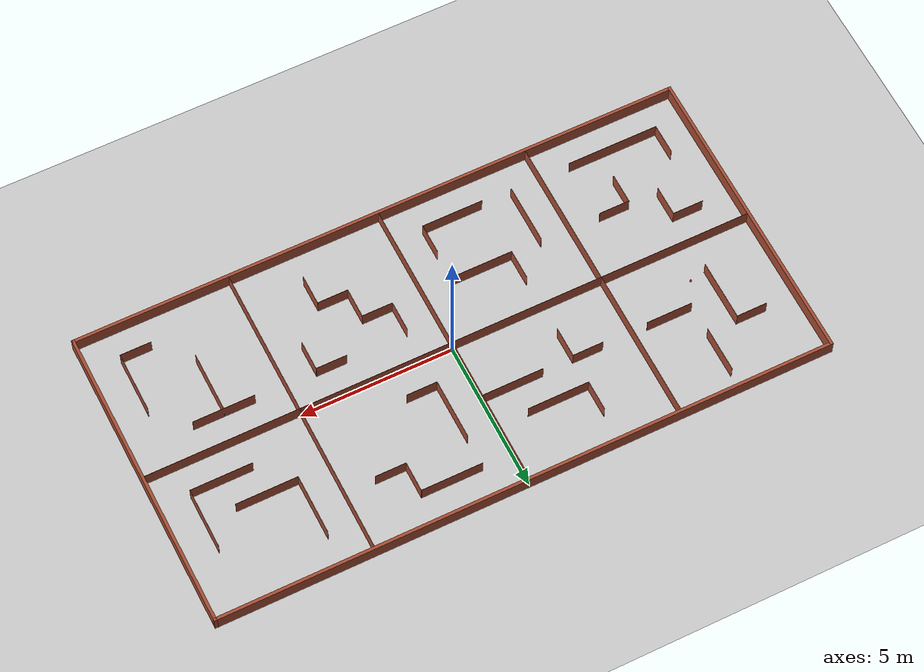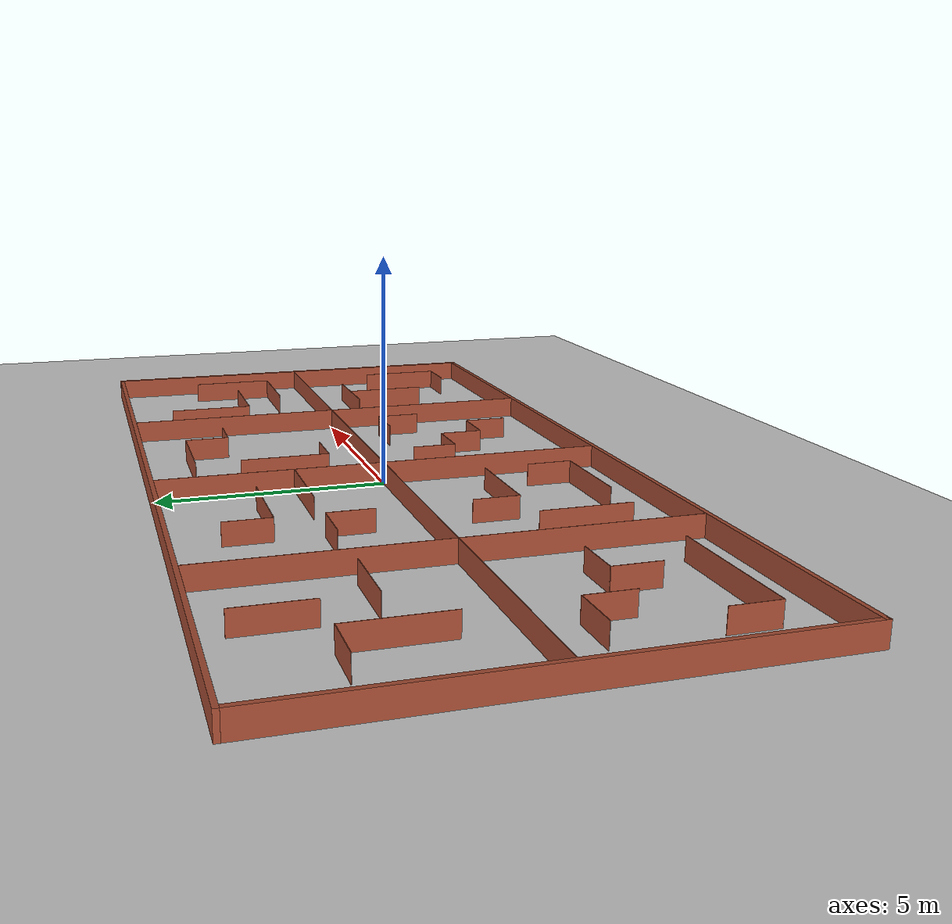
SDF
<sdf version="1.7">
 <world name="default">
  <light name="sun" type="directional">
   <pose>0 0 10 0 -0 0</pose>
   <diffuse>0.8 0.8 0.8 1</diffuse>
   <specular>0.2 0.2 0.2 1</specular>
   <attenuation>
    <range>1000</range>
    <constant>0.9</constant>
    <linear>0.01</linear>
    <quadratic>0.001</quadratic>
   </attenuation>
   <direction>-0.5 0.1 -0.9</direction>
   <spot><inner_angle>0</inner_angle><outer_angle>0</outer_angle><falloff>0</falloff></spot>
  </light>
  <model name="ground_plane">
   <static>1</static>
   <link name="link">
    <collision name="collision">
     <geometry><plane><normal>0 0 1</normal><size>100 100</size></plane></geometry>
     <surface>
      <contact><collide_bitmask>65535</collide_bitmask></contact>
      <friction><ode><mu>100</mu><mu2>50</mu2></ode></friction>
     </surface>
    </collision>
    <visual name="visual">
     <cast_shadows>0</cast_shadows>
     <geometry><plane><normal>0 0 1</normal><size>100 100</size></plane></geometry>
     <material>
      <script><uri>file://media/materials/scripts/gazebo.material</uri><name>Gazebo/Grey</name></script>
     </material>
    </visual>
   </link>
  </model>
  <gravity>0 0 -9.8</gravity>
  <magnetic_field>6e-06 2.3e-05 -4.2e-05</magnetic_field>
  <atmosphere type="adiabatic"/>
  <physics type="ode">
   <max_step_size>0.001</max_step_size>
   <real_time_factor>1</real_time_factor>
   <real_time_update_rate>1000</real_time_update_rate>
  </physics>
  <scene><ambient>0.4 0.4 0.4 1</ambient><background>0.7 0.7 0.7 1</background><shadows>1</shadows></scene>
  <spherical_coordinates>
   <surface_model>EARTH_WGS84</surface_model>
   <latitude_deg>0</latitude_deg>
   <longitude_deg>0</longitude_deg>
   <elevation>0</elevation>
   <heading_deg>0</heading_deg>
  </spherical_coordinates>
  <model name="tb_multi_map_1">
   <link name="Wall_11">
    <collision name="Wall_11_Collision">
     <geometry><box><size>10.01 0.01 0.5</size></box></geometry>
     <pose>0 0 0.25 0 -0 0</pose>
    </collision>
    <visual name="Wall_11_Visual">
     <pose>0 0 0.25 0 -0 0</pose>
     <geometry><box><size>10.01 0.01 0.5</size></box></geometry>
     <material>
      <script><uri>file://media/materials/scripts/gazebo.material</uri><name>Gazebo/Bricks</name></script>
      <ambient>1 1 1 1</ambient>
     </material>
     <meta><layer>0</layer></meta>
    </visual>
    <pose>5 0 0 0 -0 -1.5708</pose>
   </link>
   <link name="Wall_13">
    <collision name="Wall_13_Collision">
     <geometry><box><size>10.01 0.01 0.5</size></box></geometry>
     <pose>0 0 0.25 0 -0 0</pose>
    </collision>
    <visual name="Wall_13_Visual">
     <pose>0 0 0.25 0 -0 0</pose>
     <geometry><box><size>10.01 0.01 0.5</size></box></geometry>
     <material>
      <script><uri>file://media/materials/scripts/gazebo.material</uri><name>Gazebo/Bricks</name></script>
      <ambient>1 1 1 1</ambient>
     </material>
     <meta><layer>0</layer></meta>
    </visual>
    <pose>0 0 0 0 -0 -1.5708</pose>
   </link>
   <link name="Wall_15">
    <collision name="Wall_15_Collision">
     <geometry><box><size>10.01 0.01 0.5</size></box></geometry>
     <pose>0 0 0.25 0 -0 0</pose>
    </collision>
    <visual name="Wall_15_Visual">
     <pose>0 0 0.25 0 -0 0</pose>
     <geometry><box><size>10.01 0.01 0.5</size></box></geometry>
     <material>
      <script><uri>file://media/materials/scripts/gazebo.material</uri><name>Gazebo/Bricks</name></script>
      <ambient>1 1 1 1</ambient>
     </material>
     <meta><layer>0</layer></meta>
    </visual>
    <pose>-5 0 0 0 -0 -1.5708</pose>
   </link>
   <link name="Wall_19">
    <collision name="Wall_19_Collision">
     <geometry><box><size>1.51 0.01 0.5</size></box></geometry>
     <pose>0 0 0.25 0 -0 0</pose>
    </collision>
    <visual name="Wall_19_Visual">
     <pose>0 0 0.25 0 -0 0</pose>
     <geometry><box><size>1.51 0.01 0.5</size></box></geometry>
     <material>
      <script><uri>file://media/materials/scripts/gazebo.material</uri><name>Gazebo/Bricks</name></script>
      <ambient>1 1 1 1</ambient>
     </material>
     <meta><layer>0</layer></meta>
    </visual>
    <pose>-7 3.75 0 0 -0 -1.5708</pose>
   </link>
   <link name="Wall_24">
    <collision name="Wall_24_Collision">
     <geometry><box><size>1.01 0.01 0.5</size></box></geometry>
     <pose>0 0 0.25 0 -0 0</pose>
    </collision>
    <visual name="Wall_24_Visual">
     <pose>0 0 0.25 0 -0 0</pose>
     <geometry><box><size>1.01 0.01 0.5</size></box></geometry>
     <material>
      <script><uri>file://media/materials/scripts/gazebo.material</uri><name>Gazebo/Bricks</name></script>
      <ambient>1 1 1 1</ambient>
     </material>
     <meta><layer>0</layer></meta>
    </visual>
    <pose>-8.5 3 0 0 -0 0</pose>
   </link>
   <link name="Wall_39">
    <collision name="Wall_39_Collision">
     <geometry><box><size>1.51 0.01 0.5</size></box></geometry>
     <pose>0 0 0.25 0 -0 0</pose>
    </collision>
    <visual name="Wall_39_Visual">
     <pose>0 0 0.25 0 -0 0</pose>
     <geometry><box><size>1.51 0.01 0.5</size></box></geometry>
     <material>
      <script><uri>file://media/materials/scripts/gazebo.material</uri><name>Gazebo/Bricks</name></script>
      <ambient>1 1 1 1</ambient>
     </material>
     <meta><layer>0</layer></meta>
    </visual>
    <pose>-6.25 2 0 0 -0 0</pose>
   </link>
   <link name="Wall_4">
    <collision name="Wall_4_Collision">
     <geometry><box><size>10.2 0.1 0.5</size></box></geometry>
     <pose>0 0 0.25 0 -0 0</pose>
    </collision>
    <visual name="Wall_4_Visual">
     <pose>0 0 0.25 0 -0 0</pose>
     <geometry><box><size>10.2 0.1 0.5</size></box></geometry>
     <material>
      <script><uri>file://media/materials/scripts/gazebo.material</uri><name>Gazebo/Bricks</name></script>
      <ambient>1 1 1 1</ambient>
     </material>
     <meta><layer>0</layer></meta>
    </visual>
    <pose>-10.05 0 0 0 -0 -1.5708</pose>
   </link>
   <link name="Wall_41">
    <collision name="Wall_41_Collision">
     <geometry><box><size>2.01 0.01 0.5</size></box></geometry>
     <pose>0 0 0.25 0 -0 0</pose>
    </collision>
    <visual name="Wall_41_Visual">
     <pose>0 0 0.25 0 -0 0</pose>
     <geometry><box><size>2.01 0.01 0.5</size></box></geometry>
     <material>
      <script><uri>file://media/materials/scripts/gazebo.material</uri><name>Gazebo/Bricks</name></script>
      <ambient>1 1 1 1</ambient>
     </material>
     <meta><layer>0</layer></meta>
    </visual>
    <pose>-8 2 0 0 -0 -1.5708</pose>
   </link>
   <link name="Wall_43">
    <collision name="Wall_43_Collision">
     <geometry><box><size>1.01 0.01 0.5</size></box></geometry>
     <pose>0 0 0.25 0 -0 0</pose>
    </collision>
    <visual name="Wall_43_Visual">
     <pose>0 0 0.25 0 -0 0</pose>
     <geometry><box><size>1.01 0.01 0.5</size></box></geometry>
     <material>
      <script><uri>file://media/materials/scripts/gazebo.material</uri><name>Gazebo/Bricks</name></script>
      <ambient>1 1 1 1</ambient>
     </material>
     <meta><layer>0</layer></meta>
    </visual>
    <pose>-3 3.5 0 0 -0 -1.5708</pose>
   </link>
   <link name="Wall_44">
    <collision name="Wall_44_Collision">
     <geometry><box><size>2.01 0.01 0.5</size></box></geometry>
     <pose>0 0 0.25 0 -0 0</pose>
    </collision>
    <visual name="Wall_44_Visual">
     <pose>0 0 0.25 0 -0 0</pose>
     <geometry><box><size>2.01 0.01 0.5</size></box></geometry>
     <material>
      <script><uri>file://media/materials/scripts/gazebo.material</uri><name>Gazebo/Bricks</name></script>
      <ambient>1 1 1 1</ambient>
     </material>
     <meta><layer>0</layer></meta>
    </visual>
    <pose>-2 3 0 0 -0 0</pose>
   </link>
   <link name="Wall_46">
    <collision name="Wall_46_Collision">
     <geometry><box><size>1.01 0.01 0.5</size></box></geometry>
     <pose>0 0 0.25 0 -0 0</pose>
    </collision>
    <visual name="Wall_46_Visual">
     <pose>0 0 0.25 0 -0 0</pose>
     <geometry><box><size>1.01 0.01 0.5</size></box></geometry>
     <material>
      <script><uri>file://media/materials/scripts/gazebo.material</uri><name>Gazebo/Bricks</name></script>
      <ambient>1 1 1 1</ambient>
     </material>
     <meta><layer>0</layer></meta>
    </visual>
    <pose>-3.5 2 0 0 -0 0</pose>
   </link>
   <link name="Wall_47">
    <collision name="Wall_47_Collision">
     <geometry><box><size>1.01 0.01 0.5</size></box></geometry>
     <pose>0 0 0.25 0 -0 0</pose>
    </collision>
    <visual name="Wall_47_Visual">
     <pose>0 0 0.25 0 -0 0</pose>
     <geometry><box><size>1.01 0.01 0.5</size></box></geometry>
     <material>
      <script><uri>file://media/materials/scripts/gazebo.material</uri><name>Gazebo/Bricks</name></script>
      <ambient>1 1 1 1</ambient>
     </material>
     <meta><layer>0</layer></meta>
    </visual>
    <pose>-3 1.5 0 0 -0 -1.5708</pose>
   </link>
   <link name="Wall_49">
    <collision name="Wall_49_Collision">
     <geometry><box><size>2.01 0.01 0.5</size></box></geometry>
     <pose>0 0 0.25 0 -0 0</pose>
    </collision>
    <visual name="Wall_49_Visual">
     <pose>0 0 0.25 0 -0 0</pose>
     <geometry><box><size>2.01 0.01 0.5</size></box></geometry>
     <material>
      <script><uri>file://media/materials/scripts/gazebo.material</uri><name>Gazebo/Bricks</name></script>
      <ambient>1 1 1 1</ambient>
     </material>
     <meta><layer>0</layer></meta>
    </visual>
    <pose>-1 2 0 0 -0 0</pose>
   </link>
   <link name="Wall_5">
    <collision name="Wall_5_Collision">
     <geometry><box><size>20.2 0.1 0.5</size></box></geometry>
     <pose>0 0 0.25 0 -0 0</pose>
    </collision>
    <visual name="Wall_5_Visual">
     <pose>0 0 0.25 0 -0 0</pose>
     <geometry><box><size>20.2 0.1 0.5</size></box></geometry>
     <material>
      <script><uri>file://media/materials/scripts/gazebo.material</uri><name>Gazebo/Bricks</name></script>
      <ambient>1 1 1 1</ambient>
     </material>
     <meta><layer>0</layer></meta>
    </visual>
    <pose>0 -5.05 0 0 -0 0</pose>
   </link>
   <link name="Wall_51">
    <collision name="Wall_51_Collision">
     <geometry><box><size>2.01 0.01 0.5</size></box></geometry>
     <pose>0 0 0.25 0 -0 0</pose>
    </collision>
    <visual name="Wall_51_Visual">
     <pose>0 0 0.25 0 -0 0</pose>
     <geometry><box><size>2.01 0.01 0.5</size></box></geometry>
     <material>
      <script><uri>file://media/materials/scripts/gazebo.material</uri><name>Gazebo/Bricks</name></script>
      <ambient>1 1 1 1</ambient>
     </material>
     <meta><layer>0</layer></meta>
    </visual>
    <pose>2 4 0 0 -0 0</pose>
   </link>
   <link name="Wall_52">
    <collision name="Wall_52_Collision">
     <geometry><box><size>1.01 0.01 0.5</size></box></geometry>
     <pose>0 0 0.25 0 -0 0</pose>
    </collision>
    <visual name="Wall_52_Visual">
     <pose>0 0 0.25 0 -0 0</pose>
     <geometry><box><size>1.01 0.01 0.5</size></box></geometry>
     <material>
      <script><uri>file://media/materials/scripts/gazebo.material</uri><name>Gazebo/Bricks</name></script>
      <ambient>1 1 1 1</ambient>
     </material>
     <meta><layer>0</layer></meta>
    </visual>
    <pose>3 3.5 0 0 -0 -1.5708</pose>
   </link>
   <link name="Wall_53">
    <collision name="Wall_53_Collision">
     <geometry><box><size>1.01 0.01 0.5</size></box></geometry>
     <pose>0 0 0.25 0 -0 0</pose>
    </collision>
    <visual name="Wall_53_Visual">
     <pose>0 0 0.25 0 -0 0</pose>
     <geometry><box><size>1.01 0.01 0.5</size></box></geometry>
     <material>
      <script><uri>file://media/materials/scripts/gazebo.material</uri><name>Gazebo/Bricks</name></script>
      <ambient>1 1 1 1</ambient>
     </material>
     <meta><layer>0</layer></meta>
    </visual>
    <pose>3.5 3 0 0 -0 0</pose>
   </link>
   <link name="Wall_55">
    <collision name="Wall_55_Collision">
     <geometry><box><size>2.01 0.01 0.5</size></box></geometry>
     <pose>0 0 0.25 0 -0 0</pose>
    </collision>
    <visual name="Wall_55_Visual">
     <pose>0 0 0.25 0 -0 0</pose>
     <geometry><box><size>2.01 0.01 0.5</size></box></geometry>
     <material>
      <script><uri>file://media/materials/scripts/gazebo.material</uri><name>Gazebo/Bricks</name></script>
      <ambient>1 1 1 1</ambient>
     </material>
     <meta><layer>0</layer></meta>
    </visual>
    <pose>1 2 0 0 -0 -1.5708</pose>
   </link>
   <link name="Wall_56">
    <collision name="Wall_56_Collision">
     <geometry><box><size>1.01 0.01 0.5</size></box></geometry>
     <pose>0 0 0.25 0 -0 0</pose>
    </collision>
    <visual name="Wall_56_Visual">
     <pose>0 0 0.25 0 -0 0</pose>
     <geometry><box><size>1.01 0.01 0.5</size></box></geometry>
     <material>
      <script><uri>file://media/materials/scripts/gazebo.material</uri><name>Gazebo/Bricks</name></script>
      <ambient>1 1 1 1</ambient>
     </material>
     <meta><layer>0</layer></meta>
    </visual>
    <pose>1.5 1 0 0 -0 0</pose>
   </link>
   <link name="Wall_58">
    <collision name="Wall_58_Collision">
     <geometry><box><size>2.01 0.01 0.5</size></box></geometry>
     <pose>0 0 0.25 0 -0 0</pose>
    </collision>
    <visual name="Wall_58_Visual">
     <pose>0 0 0.25 0 -0 0</pose>
     <geometry><box><size>2.01 0.01 0.5</size></box></geometry>
     <material>
      <script><uri>file://media/materials/scripts/gazebo.material</uri><name>Gazebo/Bricks</name></script>
      <ambient>1 1 1 1</ambient>
     </material>
     <meta><layer>0</layer></meta>
    </visual>
    <pose>6 3 0 0 -0 -1.5708</pose>
   </link>
   <link name="Wall_59">
    <collision name="Wall_59_Collision">
     <geometry><box><size>2.01 0.01 0.5</size></box></geometry>
     <pose>0 0 0.25 0 -0 0</pose>
    </collision>
    <visual name="Wall_59_Visual">
     <pose>0 0 0.25 0 -0 0</pose>
     <geometry><box><size>2.01 0.01 0.5</size></box></geometry>
     <material>
      <script><uri>file://media/materials/scripts/gazebo.material</uri><name>Gazebo/Bricks</name></script>
      <ambient>1 1 1 1</ambient>
     </material>
     <meta><layer>0</layer></meta>
    </visual>
    <pose>7 2 0 0 -0 0</pose>
   </link>
   <link name="Wall_6">
    <collision name="Wall_6_Collision">
     <geometry><box><size>10.2 0.1 0.5</size></box></geometry>
     <pose>0 0 0.25 0 -0 0</pose>
    </collision>
    <visual name="Wall_6_Visual">
     <pose>0 0 0.25 0 -0 0</pose>
     <geometry><box><size>10.2 0.1 0.5</size></box></geometry>
     <material>
      <script><uri>file://media/materials/scripts/gazebo.material</uri><name>Gazebo/Bricks</name></script>
      <ambient>1 1 1 1</ambient>
     </material>
     <meta><layer>0</layer></meta>
    </visual>
    <pose>10.05 0 0 0 -0 1.5708</pose>
   </link>
   <link name="Wall_61">
    <collision name="Wall_61_Collision">
     <geometry><box><size>2.01 0.01 0.5</size></box></geometry>
     <pose>0 0 0.25 0 -0 0</pose>
    </collision>
    <visual name="Wall_61_Visual">
     <pose>0 0 0.25 0 -0 0</pose>
     <geometry><box><size>2.01 0.01 0.5</size></box></geometry>
     <material>
      <script><uri>file://media/materials/scripts/gazebo.material</uri><name>Gazebo/Bricks</name></script>
      <ambient>1 1 1 1</ambient>
     </material>
     <meta><layer>0</layer></meta>
    </visual>
    <pose>9 2 0 0 -0 -1.5708</pose>
   </link>
   <link name="Wall_62">
    <collision name="Wall_62_Collision">
     <geometry><box><size>2.01 0.01 0.5</size></box></geometry>
     <pose>0 0 0.25 0 -0 0</pose>
    </collision>
    <visual name="Wall_62_Visual">
     <pose>0 0 0.25 0 -0 0</pose>
     <geometry><box><size>2.01 0.01 0.5</size></box></geometry>
     <material>
      <script><uri>file://media/materials/scripts/gazebo.material</uri><name>Gazebo/Bricks</name></script>
      <ambient>1 1 1 1</ambient>
     </material>
     <meta><layer>0</layer></meta>
    </visual>
    <pose>8 1 0 0 -0 3.14159</pose>
   </link>
   <link name="Wall_64">
    <collision name="Wall_64_Collision">
     <geometry><box><size>1.01 0.01 0.5</size></box></geometry>
     <pose>0 0 0.25 0 -0 0</pose>
    </collision>
    <visual name="Wall_64_Visual">
     <pose>0 0 0.25 0 -0 0</pose>
     <geometry><box><size>1.01 0.01 0.5</size></box></geometry>
     <material>
      <script><uri>file://media/materials/scripts/gazebo.material</uri><name>Gazebo/Bricks</name></script>
      <ambient>1 1 1 1</ambient>
     </material>
     <meta><layer>0</layer></meta>
    </visual>
    <pose>-8.5 -1 0 0 -0 0</pose>
   </link>
   <link name="Wall_65">
    <collision name="Wall_65_Collision">
     <geometry><box><size>1.01 0.01 0.5</size></box></geometry>
     <pose>0 0 0.25 0 -0 0</pose>
    </collision>
    <visual name="Wall_65_Visual">
     <pose>0 0 0.25 0 -0 0</pose>
     <geometry><box><size>1.01 0.01 0.5</size></box></geometry>
     <material>
      <script><uri>file://media/materials/scripts/gazebo.material</uri><name>Gazebo/Bricks</name></script>
      <ambient>1 1 1 1</ambient>
     </material>
     <meta><layer>0</layer></meta>
    </visual>
    <pose>-8 -1.5 0 0 -0 -1.5708</pose>
   </link>
   <link name="Wall_67">
    <collision name="Wall_67_Collision">
     <geometry><box><size>1.01 0.01 0.5</size></box></geometry>
     <pose>0 0 0.25 0 -0 0</pose>
    </collision>
    <visual name="Wall_67_Visual">
     <pose>0 0 0.25 0 -0 0</pose>
     <geometry><box><size>1.01 0.01 0.5</size></box></geometry>
     <material>
      <script><uri>file://media/materials/scripts/gazebo.material</uri><name>Gazebo/Bricks</name></script>
      <ambient>1 1 1 1</ambient>
     </material>
     <meta><layer>0</layer></meta>
    </visual>
    <pose>-9 -3.5 0 0 -0 -1.5708</pose>
   </link>
   <link name="Wall_68">
    <collision name="Wall_68_Collision">
     <geometry><box><size>3.01 0.01 0.5</size></box></geometry>
     <pose>0 0 0.25 0 -0 0</pose>
    </collision>
    <visual name="Wall_68_Visual">
     <pose>0 0 0.25 0 -0 0</pose>
     <geometry><box><size>3.01 0.01 0.5</size></box></geometry>
     <material>
      <script><uri>file://media/materials/scripts/gazebo.material</uri><name>Gazebo/Bricks</name></script>
      <ambient>1 1 1 1</ambient>
     </material>
     <meta><layer>0</layer></meta>
    </visual>
    <pose>-7.5 -4 0 0 -0 0</pose>
   </link>
   <link name="Wall_7">
    <collision name="Wall_7_Collision">
     <geometry><box><size>20.2 0.1 0.5</size></box></geometry>
     <pose>0 0 0.25 0 -0 0</pose>
    </collision>
    <visual name="Wall_7_Visual">
     <pose>0 0 0.25 0 -0 0</pose>
     <geometry><box><size>20.2 0.1 0.5</size></box></geometry>
     <material>
      <script><uri>file://media/materials/scripts/gazebo.material</uri><name>Gazebo/Bricks</name></script>
      <ambient>1 1 1 1</ambient>
     </material>
     <meta><layer>0</layer></meta>
    </visual>
    <pose>0 5.05 0 0 -0 3.14159</pose>
   </link>
   <link name="Wall_70">
    <collision name="Wall_70_Collision">
     <geometry><box><size>1.01 0.01 0.5</size></box></geometry>
     <pose>0 0 0.25 0 -0 0</pose>
    </collision>
    <visual name="Wall_70_Visual">
     <pose>0 0 0.25 0 -0 0</pose>
     <geometry><box><size>1.01 0.01 0.5</size></box></geometry>
     <material>
      <script><uri>file://media/materials/scripts/gazebo.material</uri><name>Gazebo/Bricks</name></script>
      <ambient>1 1 1 1</ambient>
     </material>
     <meta><layer>0</layer></meta>
    </visual>
    <pose>-7 -2.5 0 0 -0 -1.5708</pose>
   </link>
   <link name="Wall_73">
    <collision name="Wall_73_Collision">
     <geometry><box><size>1.01 0.01 0.5</size></box></geometry>
     <pose>0 0 0.25 0 -0 0</pose>
    </collision>
    <visual name="Wall_73_Visual">
     <pose>0 0 0.25 0 -0 0</pose>
     <geometry><box><size>1.01 0.01 0.5</size></box></geometry>
     <material>
      <script><uri>file://media/materials/scripts/gazebo.material</uri><name>Gazebo/Bricks</name></script>
      <ambient>1 1 1 1</ambient>
     </material>
     <meta><layer>0</layer></meta>
    </visual>
    <pose>-6.5 -2 0 0 -0 0</pose>
   </link>
   <link name="Wall_75">
    <collision name="Wall_75_Collision">
     <geometry><box><size>2.01 0.01 0.5</size></box></geometry>
     <pose>0 0 0.25 0 -0 0</pose>
    </collision>
    <visual name="Wall_75_Visual">
     <pose>0 0 0.25 0 -0 0</pose>
     <geometry><box><size>2.01 0.01 0.5</size></box></geometry>
     <material>
      <script><uri>file://media/materials/scripts/gazebo.material</uri><name>Gazebo/Bricks</name></script>
      <ambient>1 1 1 1</ambient>
     </material>
     <meta><layer>0</layer></meta>
    </visual>
    <pose>-4 -3 0 0 -0 -1.5708</pose>
   </link>
   <link name="Wall_77">
    <collision name="Wall_77_Collision">
     <geometry><box><size>1.01 0.01 0.5</size></box></geometry>
     <pose>0 0 0.25 0 -0 0</pose>
    </collision>
    <visual name="Wall_77_Visual">
     <pose>0 0 0.25 0 -0 0</pose>
     <geometry><box><size>1.01 0.01 0.5</size></box></geometry>
     <material>
      <script><uri>file://media/materials/scripts/gazebo.material</uri><name>Gazebo/Bricks</name></script>
      <ambient>1 1 1 1</ambient>
     </material>
     <meta><layer>0</layer></meta>
    </visual>
    <pose>-3 -1.5 0 0 -0 -1.5708</pose>
   </link>
   <link name="Wall_78">
    <collision name="Wall_78_Collision">
     <geometry><box><size>2.01 0.01 0.5</size></box></geometry>
     <pose>0 0 0.25 0 -0 0</pose>
    </collision>
    <visual name="Wall_78_Visual">
     <pose>0 0 0.25 0 -0 0</pose>
     <geometry><box><size>2.01 0.01 0.5</size></box></geometry>
     <material>
      <script><uri>file://media/materials/scripts/gazebo.material</uri><name>Gazebo/Bricks</name></script>
      <ambient>1 1 1 1</ambient>
     </material>
     <meta><layer>0</layer></meta>
    </visual>
    <pose>-2 -2 0 0 -0 0</pose>
   </link>
   <link name="Wall_80">
    <collision name="Wall_80_Collision">
     <geometry><box><size>1.01 0.01 0.5</size></box></geometry>
     <pose>0 0 0.25 0 -0 0</pose>
    </collision>
    <visual name="Wall_80_Visual">
     <pose>0 0 0.25 0 -0 0</pose>
     <geometry><box><size>1.01 0.01 0.5</size></box></geometry>
     <material>
      <script><uri>file://media/materials/scripts/gazebo.material</uri><name>Gazebo/Bricks</name></script>
      <ambient>1 1 1 1</ambient>
     </material>
     <meta><layer>0</layer></meta>
    </visual>
    <pose>-1 -3.5 0 0 -0 -1.5708</pose>
   </link>
   <link name="Wall_81">
    <collision name="Wall_81_Collision">
     <geometry><box><size>2.01 0.01 0.5</size></box></geometry>
     <pose>0 0 0.25 0 -0 0</pose>
    </collision>
    <visual name="Wall_81_Visual">
     <pose>0 0 0.25 0 -0 0</pose>
     <geometry><box><size>2.01 0.01 0.5</size></box></geometry>
     <material>
      <script><uri>file://media/materials/scripts/gazebo.material</uri><name>Gazebo/Bricks</name></script>
      <ambient>1 1 1 1</ambient>
     </material>
     <meta><layer>0</layer></meta>
    </visual>
    <pose>-2 -4 0 0 -0 3.14159</pose>
   </link>
   <link name="Wall_83">
    <collision name="Wall_83_Collision">
     <geometry><box><size>1.01 0.01 0.5</size></box></geometry>
     <pose>0 0 0.25 0 -0 0</pose>
    </collision>
    <visual name="Wall_83_Visual">
     <pose>0 0 0.25 0 -0 0</pose>
     <geometry><box><size>1.01 0.01 0.5</size></box></geometry>
     <material>
      <script><uri>file://media/materials/scripts/gazebo.material</uri><name>Gazebo/Bricks</name></script>
      <ambient>1 1 1 1</ambient>
     </material>
     <meta><layer>0</layer></meta>
    </visual>
    <pose>1 -1.5 0 0 -0 -1.5708</pose>
   </link>
   <link name="Wall_84">
    <collision name="Wall_84_Collision">
     <geometry><box><size>1.01 0.01 0.5</size></box></geometry>
     <pose>0 0 0.25 0 -0 0</pose>
    </collision>
    <visual name="Wall_84_Visual">
     <pose>0 0 0.25 0 -0 0</pose>
     <geometry><box><size>1.01 0.01 0.5</size></box></geometry>
     <material>
      <script><uri>file://media/materials/scripts/gazebo.material</uri><name>Gazebo/Bricks</name></script>
      <ambient>1 1 1 1</ambient>
     </material>
     <meta><layer>0</layer></meta>
    </visual>
    <pose>1.5 -2 0 0 -0 0</pose>
   </link>
   <link name="Wall_85">
    <collision name="Wall_85_Collision">
     <geometry><box><size>1.01 0.01 0.5</size></box></geometry>
     <pose>0 0 0.25 0 -0 0</pose>
    </collision>
    <visual name="Wall_85_Visual">
     <pose>0 0 0.25 0 -0 0</pose>
     <geometry><box><size>1.01 0.01 0.5</size></box></geometry>
     <material>
      <script><uri>file://media/materials/scripts/gazebo.material</uri><name>Gazebo/Bricks</name></script>
      <ambient>1 1 1 1</ambient>
     </material>
     <meta><layer>0</layer></meta>
    </visual>
    <pose>2 -2.5 0 0 -0 -1.5708</pose>
   </link>
   <link name="Wall_86">
    <collision name="Wall_86_Collision">
     <geometry><box><size>1.01 0.01 0.5</size></box></geometry>
     <pose>0 0 0.25 0 -0 0</pose>
    </collision>
    <visual name="Wall_86_Visual">
     <pose>0 0 0.25 0 -0 0</pose>
     <geometry><box><size>1.01 0.01 0.5</size></box></geometry>
     <material>
      <script><uri>file://media/materials/scripts/gazebo.material</uri><name>Gazebo/Bricks</name></script>
      <ambient>1 1 1 1</ambient>
     </material>
     <meta><layer>0</layer></meta>
    </visual>
    <pose>2.5 -3 0 0 -0 0</pose>
   </link>
   <link name="Wall_88">
    <collision name="Wall_88_Collision">
     <geometry><box><size>1.01 0.01 0.5</size></box></geometry>
     <pose>0 0 0.25 0 -0 0</pose>
    </collision>
    <visual name="Wall_88_Visual">
     <pose>0 0 0.25 0 -0 0</pose>
     <geometry><box><size>1.01 0.01 0.5</size></box></geometry>
     <material>
      <script><uri>file://media/materials/scripts/gazebo.material</uri><name>Gazebo/Bricks</name></script>
      <ambient>1 1 1 1</ambient>
     </material>
     <meta><layer>0</layer></meta>
    </visual>
    <pose>3.5 -1 0 0 -0 0</pose>
   </link>
   <link name="Wall_89">
    <collision name="Wall_89_Collision">
     <geometry><box><size>1.01 0.01 0.5</size></box></geometry>
     <pose>0 0 0.25 0 -0 0</pose>
    </collision>
    <visual name="Wall_89_Visual">
     <pose>0 0 0.25 0 -0 0</pose>
     <geometry><box><size>1.01 0.01 0.5</size></box></geometry>
     <material>
      <script><uri>file://media/materials/scripts/gazebo.material</uri><name>Gazebo/Bricks</name></script>
      <ambient>1 1 1 1</ambient>
     </material>
     <meta><layer>0</layer></meta>
    </visual>
    <pose>4 -1.5 0 0 -0 -1.5708</pose>
   </link>
   <link name="Wall_9">
    <collision name="Wall_9_Collision">
     <geometry><box><size>20.01 0.01 0.5</size></box></geometry>
     <pose>0 0 0.25 0 -0 0</pose>
    </collision>
    <visual name="Wall_9_Visual">
     <pose>0 0 0.25 0 -0 0</pose>
     <geometry><box><size>20.01 0.01 0.5</size></box></geometry>
     <material>
      <script><uri>file://media/materials/scripts/gazebo.material</uri><name>Gazebo/Bricks</name></script>
      <ambient>1 1 1 1</ambient>
     </material>
     <meta><layer>0</layer></meta>
    </visual>
   </link>
   <link name="Wall_91">
    <collision name="Wall_91_Collision">
     <geometry><box><size>2.01 0.01 0.5</size></box></geometry>
     <pose>0 0 0.25 0 -0 0</pose>
    </collision>
    <visual name="Wall_91_Visual">
     <pose>0 0 0.25 0 -0 0</pose>
     <geometry><box><size>2.01 0.01 0.5</size></box></geometry>
     <material>
      <script><uri>file://media/materials/scripts/gazebo.material</uri><name>Gazebo/Bricks</name></script>
      <ambient>1 1 1 1</ambient>
     </material>
     <meta><layer>0</layer></meta>
    </visual>
    <pose>7 -1 0 0 -0 0</pose>
   </link>
   <link name="Wall_93">
    <collision name="Wall_93_Collision">
     <geometry><box><size>2.01 0.01 0.5</size></box></geometry>
     <pose>0 0 0.25 0 -0 0</pose>
    </collision>
    <visual name="Wall_93_Visual">
     <pose>0 0 0.25 0 -0 0</pose>
     <geometry><box><size>2.01 0.01 0.5</size></box></geometry>
     <material>
      <script><uri>file://media/materials/scripts/gazebo.material</uri><name>Gazebo/Bricks</name></script>
      <ambient>1 1 1 1</ambient>
     </material>
     <meta><layer>0</layer></meta>
    </visual>
    <pose>7 -2 0 0 -0 -1.5708</pose>
   </link>
   <link name="Wall_95">
    <collision name="Wall_95_Collision">
     <geometry><box><size>2.01 0.01 0.5</size></box></geometry>
     <pose>0 0 0.25 0 -0 0</pose>
    </collision>
    <visual name="Wall_95_Visual">
     <pose>0 0 0.25 0 -0 0</pose>
     <geometry><box><size>2.01 0.01 0.5</size></box></geometry>
     <material>
      <script><uri>file://media/materials/scripts/gazebo.material</uri><name>Gazebo/Bricks</name></script>
      <ambient>1 1 1 1</ambient>
     </material>
     <meta><layer>0</layer></meta>
    </visual>
    <pose>9 -3 0 0 -0 -1.5708</pose>
   </link>
   <link name="Wall_97">
    <collision name="Wall_97_Collision">
     <geometry><box><size>1.01 0.01 0.5</size></box></geometry>
     <pose>0 0 0.25 0 -0 0</pose>
    </collision>
    <visual name="Wall_97_Visual">
     <pose>0 0 0.25 0 -0 0</pose>
     <geometry><box><size>1.01 0.01 0.5</size></box></geometry>
     <material>
      <script><uri>file://media/materials/scripts/gazebo.material</uri><name>Gazebo/Bricks</name></script>
      <ambient>1 1 1 1</ambient>
     </material>
     <meta><layer>0</layer></meta>
    </visual>
    <pose>8.5 -4 0 0 -0 0</pose>
   </link>
   <link name="Wall_99">
    <collision name="Wall_99_Collision">
     <geometry><box><size>1.01 0.01 0.5</size></box></geometry>
     <pose>0 0 0.25 0 -0 0</pose>
    </collision>
    <visual name="Wall_99_Visual">
     <pose>0 0 0.25 0 -0 0</pose>
     <geometry><box><size>1.01 0.01 0.5</size></box></geometry>
     <material>
      <script><uri>file://media/materials/scripts/gazebo.material</uri><name>Gazebo/Bricks</name></script>
      <ambient>1 1 1 1</ambient>
     </material>
     <meta><layer>0</layer></meta>
    </visual>
    <pose>3 -3.5 0 0 -0 -1.5708</pose>
   </link>
   <static>1</static>
  </model>
  <model name="cricket_ball">
   <link name="link">
    <pose>0 0 0.0375 0 -0 0</pose>
    <inertial>
     <mass>0.1467</mass>
     <inertia>
      <ixx>8.25187e-05</ixx>
      <ixy>0</ixy>
      <ixz>0</ixz>
      <iyy>8.25187e-05</iyy>
      <iyz>0</iyz>
      <izz>8.25187e-05</izz>
     </inertia>
    </inertial>
    <collision name="collision">
     <geometry><sphere><radius>0.0375</radius></sphere></geometry>
     <surface>
      <contact>
       <poissons_ratio>0.347</poissons_ratio>
       <elastic_modulus>8.8e+09</elastic_modulus>
       <ode><kp>100000</kp><kd>100</kd><max_vel>100</max_vel><min_depth>0.001</min_depth></ode>
      </contact>
      <friction>
       <torsional>
        <coefficient>1</coefficient>
        <use_patch_radius>0</use_patch_radius>
        <surface_radius>0.01</surface_radius>
       </torsional>
      </friction>
     </surface>
    </collision>
    <visual name="visual">
     <geometry><sphere><radius>0.0375</radius></sphere></geometry>
     <material>
      <script><uri>file://media/materials/scripts/gazebo.material</uri><name>Gazebo/Red</name></script>
     </material>
    </visual>
    <velocity_decay><linear>0</linear><angular>0.005</angular></velocity_decay>
   </link>
   <pose>-7.48872 1.0898 -0.001014 0 -0 0</pose>
  </model>
 </world>
</sdf>
